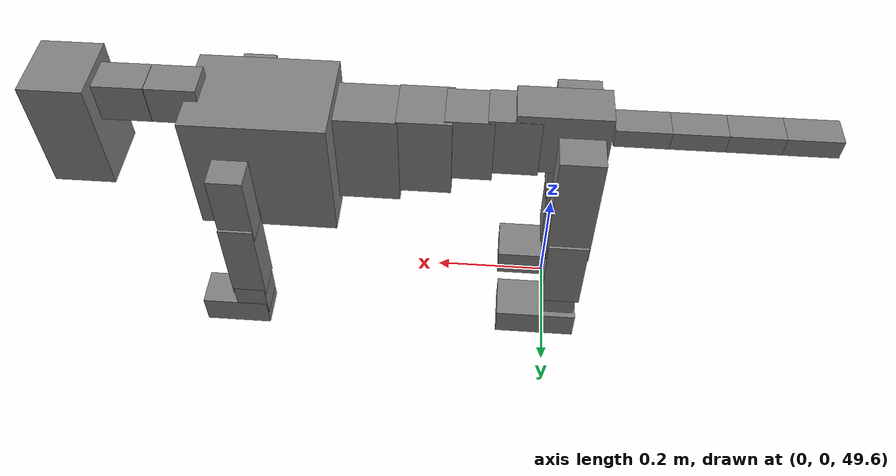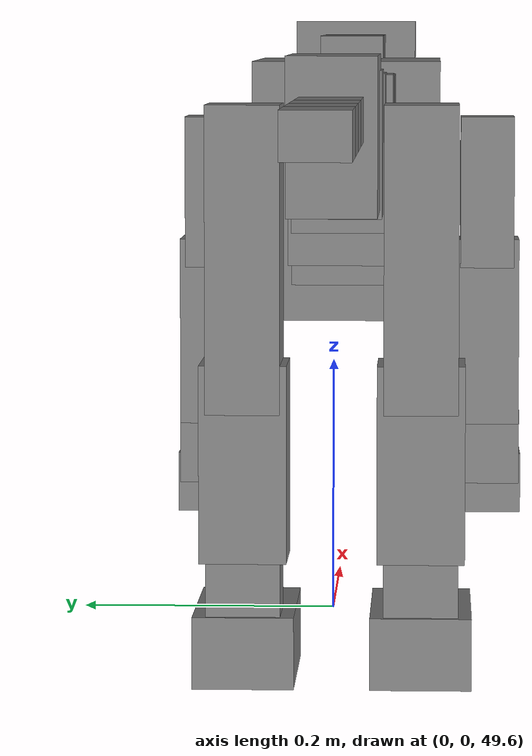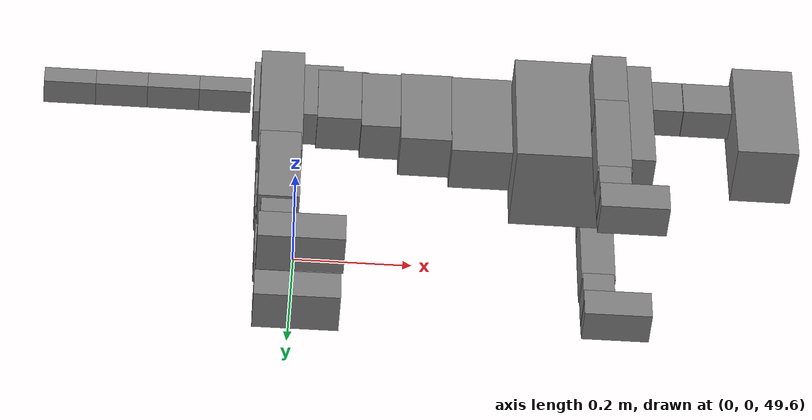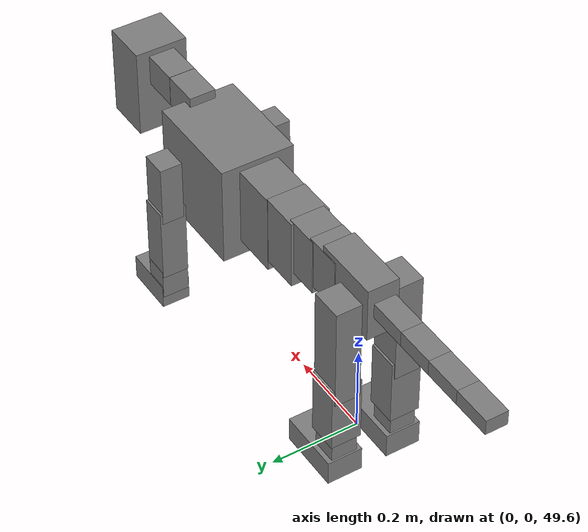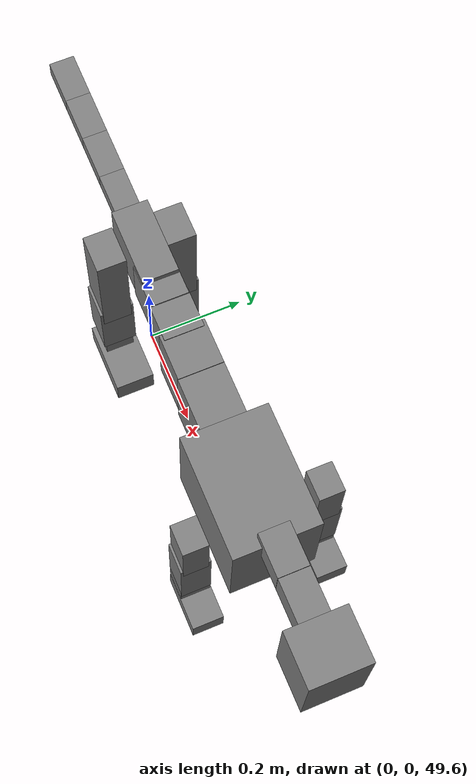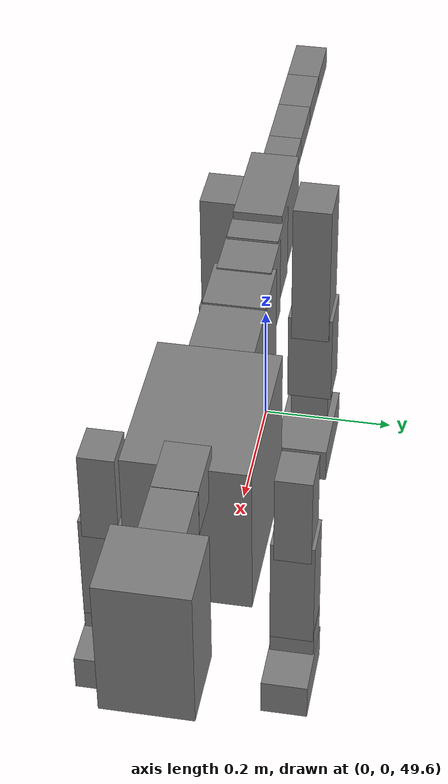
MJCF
<mujoco model="dog">

    <default>
        <joint armature="0.02" stiffness="1" damping="0.2" limited="true"/>
        <geom condim="3" friction="1 0.05 0.05" margin="0.01"/>
        <motor ctrllimited="true" ctrlrange="-1.0 1.0" forcelimited="true" gear="50"/>
    </default>

    <compiler inertiafromgeom="true" angle="radian"/>

    <option timestep="0.016" iterations="50" tolerance="1e-10" solver="Newton" jacobian="dense" cone="pyramidal"/>

    <size nconmax="20000" njmax="60000" nstack="5000000"/>
    <visual>
        <map force="0.1" zfar="30"/>
        <rgba haze="0.15 0.25 0.35 1"/>
        <quality shadowsize="2048"/>
        <global offwidth="800" offheight="800"/>
    </visual>

    <asset>
        <texture type="skybox" builtin="gradient" rgb1="0.3 0.5 0.7" rgb2="0 0 0" width="512" height="512"/>
        <texture name="texplane" type="2d" builtin="checker" rgb1=".2 .3 .4" rgb2=".1 0.15 0.2" width="512" height="512"
                 mark="cross" markrgb=".8 .8 .8"/>
        <texture name="texgeom" type="cube" builtin="flat" mark="cross" width="127" height="1278" rgb1="0.8 0.6 0.4"
                 rgb2="0.8 0.6 0.4" markrgb="1 1 1" random="0.01"/>

        <material name="matplane" reflectance="0.3" texture="texplane" texrepeat="1 1" texuniform="true"/>
        <material name="matgeom" texture="texgeom" texuniform="true" rgba="0.8 0.6 .4 1"/>
    </asset>

    <worldbody>
        <geom name="floor" pos="0 0 0" size="0 0 .25" type="plane" material="matplane" condim="3"/>

        <light directional="false" diffuse=".2 .2 .2" specular="0 0 0" pos="0 0 5" dir="0 0 -1" castshadow="false"/>
        <light mode="targetbodycom" target="torso" directional="false" diffuse=".8 .8 .8" specular="0.3 0.3 0.3"
               pos="0 0 4.0" dir="0 0 -1"/>

        <body name="root" pos="0 0 50">
            <freejoint name="root_1"/>
            <geom type="box" pos="0 0 -0.02" size="0.0774  0.0358  0.063" density="2030"/>

            <body name="spine1" pos="0.054 0 0">
                <joint name="spine1_y" axis="0 1 0" range="0 0.7" limited="true"/>
                <geom type="box" pos="0.02375 0 -0.03" size="0.04375  0.0375  0.05985" density="2030"/>

                <body name="spine2" pos="0.0612 0 0">
                    <joint name="spine2_y" axis="0 1 0" range="-0.15 0.15" limited="true"/>
                    <geom type="box" pos="0.03555  0  -0.04" size="0.04055  0.039  0.06615" density="2030"/>

                    <body name="spine3" pos="0.0730 0 0">
                        <joint name="spine3_y" axis="0 1 0" range="-0.15 0.15" limited="true"/>
                        <geom type="box" pos="0.03555  0  -0.057" size="0.04555  0.0445  0.081" density="2030"/>

                        <body name="spine4" pos="0.0780 0 0">
                            <joint name="spine4_y" axis="0 1 0" range="-0.15 0.15" limited="true"/>
                            <geom type="box" pos="0.05265  0  -0.07" size="0.05265  0.045  0.09135" density="2030"/>

                            <body name="torso" pos="0.1082 0 0">
                                <joint name="torso_y" axis="0 1 0" range="-0.15 0.15" limited="true"/>
                                <geom type="box" pos="0.11925  0  -0.085" size="0.11925  0.085  0.11745"
                                      density="2030"/>

                                <body name="neck1" pos="0.2160  0   0.0180">
                                    <joint name="neck1_y" axis="0 1 0" range="-1.2  -1" limited="true"/>
                                    <geom type="box" pos="0.0423  0  0" size="0.0423  0.03  0.036" density="2325"/>

                                    <body name="neck2" pos="0.0853  0  0">
                                        <joint name="neck2_y" axis="0 1 0" range="0.1  0" limited="true"/>
                                        <geom type="box" pos="0.0423  0  0" size="0.0423  0.03  0.036" density="2325"/>

                                        <body name="head" pos="0.0853  0  0">
                                            <joint name="head_y" axis="0 1 0" range="-0.3  -0.2" limited="true"/>
                                            <geom type="box" pos="0.0531  0  -0.055" size="0.0531  0.06  0.1044"
                                                  density="4030"/>

                                        </body>
                                    </body>
                                </body>

                                <body name="front_shoulder" pos="0.156  0   -0.0480">
                                    <joint name="front_shoulder_y" axis="0 1 0" range="-1 1.5" limited="true"/>
                                    <geom type="box" pos="0 0.13 -0.0444" size="0.0295  0.0252  0.0710" density="1158"/>
                                    <geom type="box" pos="0 -0.13 -0.0444" size="0.0295  0.0252  0.0710"
                                          density="1158"/>

                                    <body name="front_elbow" pos="0  0  -0.0888">
                                        <joint name="front_elbow_y" axis="0 1 0" range="-2 0" limited="true"/>
                                        <geom type="box" pos="0 0.13 -0.0874" size="0.0293  0.0300  0.0874"
                                              density="1081"/>
                                        <geom type="box" pos="0 -0.13 -0.0874" size="0.0293  0.0300  0.0874"
                                              density="1081"/>

                                        <body name="front_wrist" pos="0  0  -0.1749">
                                            <joint name="front_wrist_y" axis="0 1 0" range="-0.2 0" limited="true"/>
                                            <geom type="box" pos="0 0.13 -0.0216" size="0.0273  0.0304  0.0348"
                                                  density="1664"/>
                                            <geom type="box" pos="0 -0.13 -0.0216" size="0.0273  0.0304  0.0348"
                                                  density="1664"/>

                                            <body name="front_finger_end" pos="0  0  -0.0433">
                                                <joint name="front_finger_y" axis="0 1 0" range="-0.4 1"
                                                       limited="true"/>
                                                <geom type="box" pos="0.0318  0.13  -0.0129"
                                                      size="0.0582  0.0318  0.0279" density="1515"/>
                                                <geom type="box" pos="0.0318  -0.13  -0.0129"
                                                      size="0.0582  0.0318  0.0279" density="1515"/>

                                            </body>

                                        </body>
                                    </body>
                                </body>

                            </body>
                        </body>
                    </body>
                </body>
            </body>

            <body name="back_hip" pos="-0.03 0 -0.018">
                <joint name="back_hip_y" axis="0 1 0" range="-1.5 0.3" limited="true"/>
                <geom type="box" pos="0 0.07 -0.0984" size="0.0373  0.0293  0.1212" density="1154"/>
                <geom type="box" pos="0 -0.07 -0.0984" size="0.0373  0.0293  0.1212" density="1154"/>

                <body name="back_knee" pos="0  0  -0.1967">
                    <joint name="back_knee_y" axis="0 1 0" range="0 2.8" limited="true"/>
                    <geom type="box" pos="0 0.07 -0.0627" size="0.0350  0.0345  0.0782" density="1227"/>
                    <geom type="box" pos="0 -0.07 -0.0627" size="0.0350  0.0345  0.0782" density="1227"/>

                    <body name="back_ankle" pos="0  0  -0.1253">
                        <joint name="back_ankle_y" axis="0 1 0" range="-2.2 0" limited="true"/>
                        <geom type="box" pos="0 0.07 -0.0368" size="0.0294  0.0294  0.0480" density="1284"/>
                        <geom type="box" pos="0 -0.07 -0.0368" size="0.0294  0.0294  0.0480" density="1284"/>

                        <body name="back_toe_end" pos="0  0  -0.0735">
                            <joint name="back_toe_y" axis="0 1 0" range="-0.4 1" limited="true"/>
                            <geom type="box" pos="0.0401  0.07  -0.0136" size="0.0734  0.0401  0.0286" density="1515"/>
                            <geom type="box" pos="0.0401  -0.07  -0.0136" size="0.0734  0.0401  0.0286" density="1515"/>

                        </body>
                    </body>
                </body>
            </body>

            <body name="tail1" pos="-0.074 0 -0.006">
                <joint name="tail1_y" axis="0 1 0" range="-0.2 0.2" limited="true"/>
                <geom type="box" pos="-0.0536  0  0" size="0.045  0.025  0.0175" density="1587"/>

                <body name="tail2" pos="-0.09 0 0">
                    <joint name="tail2_y" axis="0 1 0" range="-0.2 0.2" limited="true"/>
                    <geom type="box" pos="-0.0536  0  0" size="0.045  0.025  0.0175" density="1587"/>

                    <body name="tail3" pos="-0.09 0 0">
                        <joint name="tail3_y" axis="0 1 0" range="-0.2 0.2" limited="true"/>
                        <geom type="box" pos="-0.0536  0  0" size="0.045  0.025  0.0175" density="1587"/>

                        <body name="tail4" pos="-0.09 0 0">
                            <joint name="tail4_y" axis="0 1 0" range="-0.2 0.2" limited="true"/>
                            <geom type="box" pos="-0.0536  0  0" size="0.045  0.025  0.0175" density="1587"/>

                        </body>
                    </body>
                </body>
            </body>
        </body>
    </worldbody>

    <actuator>
        <motor joint="spine1_y" forcerange="-150 150     "/>
        <motor joint="spine2_y" forcerange="-150 150     "/>
        <motor joint="spine3_y" forcerange="-150 150     "/>
        <motor joint="spine4_y" forcerange="-150 150     "/>
        <motor joint="torso_y" forcerange="-150 150     "/>
        <motor joint="neck1_y" forcerange="-100 100       "/>
        <motor joint="neck2_y" forcerange="-100 100       "/>
        <motor joint="head_y" forcerange="-150 150       "/>
        <motor joint="front_shoulder_y" forcerange="-102.18 166.01"/>
        <motor joint="front_elbow_y" forcerange="-159.41 158.68"/>
        <motor joint="front_wrist_y" forcerange="-139.26 103.67"/>
        <motor joint="front_finger_y" forcerange="-34.48 94.92"/>
        <motor joint="back_hip_y" forcerange="-286.53 303.57"/>
        <motor joint="back_knee_y" forcerange="-362.60 338.86"/>
        <motor joint="back_angle_y" forcerange="-227.59 142.70"/>
        <motor joint="back_toe_y" forcerange="-112.90 127.52"/>
        <motor joint="tail1_y" forcerange="-50 50     "/>
        <motor joint="tail2_y" forcerange="-50 50     "/>
        <motor joint="tail3_y" forcerange="-50 50     "/>
        <motor joint="tail4_y" forcerange="-50 50     "/>
    </actuator>
</mujoco>
